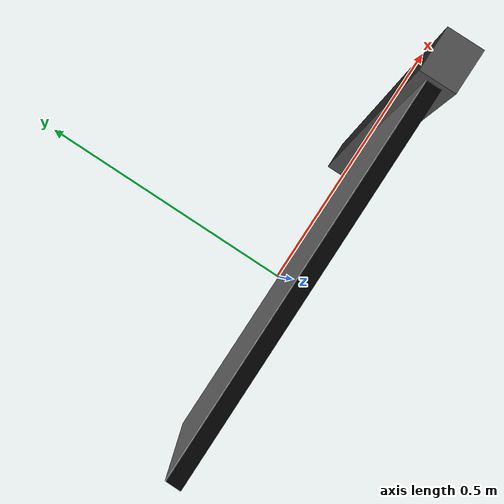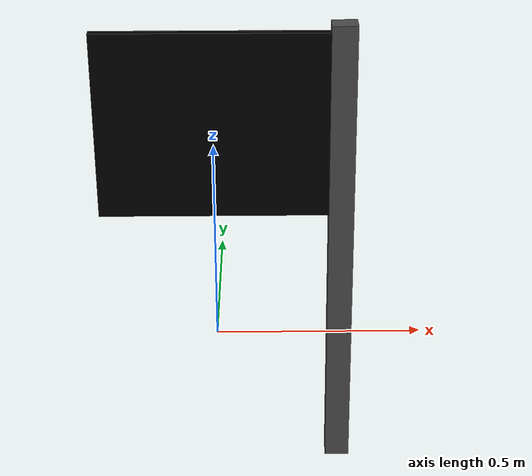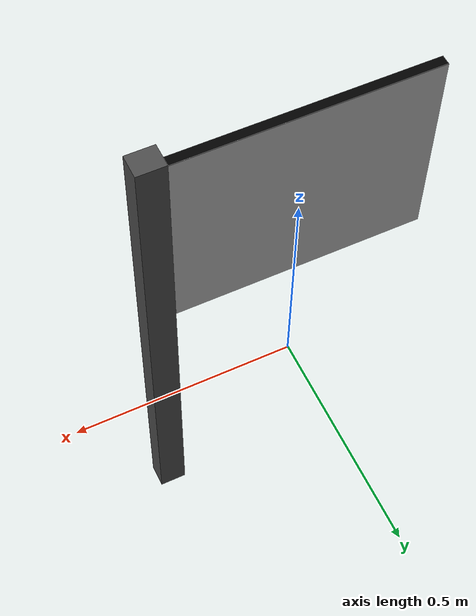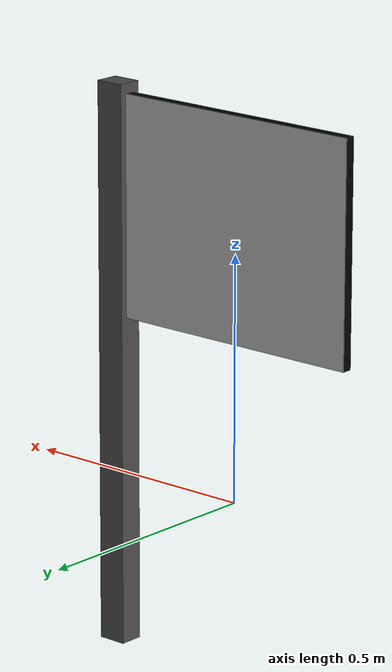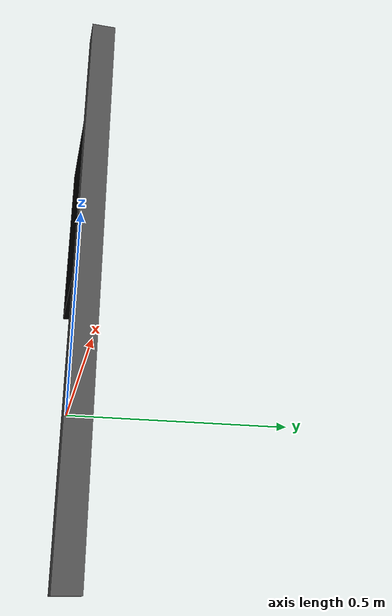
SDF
<?xml version="1.0" ?>
<sdf version="1.7">
  <model name="slow">
    <static>true</static>

    <!-- 牌面 -->
    <link name="link">

	  <!-- 黑色底板 -->
	  <visual name="board_base">
		<pose>0 0 0.55 0 0 0</pose>
		<geometry>
		  <box>
		    <size>0.55 0.02 0.45</size> <!-- 厚度稍微有 -->
		  </box>
		</geometry>
		<material>
		  <ambient>0 0 0 1</ambient>
		  <diffuse>0 0 0 1</diffuse>
		</material>
	  </visual>

	  <!-- 貼圖板（前面那層） -->
	  <visual name="board_texture">
		<!-- y +0.011 → 往外一點 -->
		<pose>0 0.011 0.55 0 0 0</pose>

		<geometry>
		  <box>
		    <size>0.55 0.001 0.45</size> <!-- 很薄 -->
		  </box>
		</geometry>

		<material>
		  <script>
		    <uri>model://slow/materials/scripts</uri>
		    <uri>model://slow/materials/textures</uri>
		    <name>Sign/slow</name>
		  </script>
		</material>
	  </visual>

      <!-- 偏右支柱 -->
      <collision name="pole_collision">
        <pose>0.3 0 0.22 0 0 0</pose>
        <geometry>
          <box>
            <size>0.06 0.05 0.44</size>
          </box>
        </geometry>
      </collision>

      <visual name="pole_visual">
        <pose>0.3 0 0.22 0 0 0</pose>
        <geometry>
          <box>
            <size>0.06 0.05 1.15</size>
          </box>
        </geometry>
        <material>
          <ambient>0.3 0.3 0.3 1</ambient>
          <diffuse>0.3 0.3 0.3 1</diffuse>
        </material>
      </visual>

    </link>
  </model>
</sdf>
